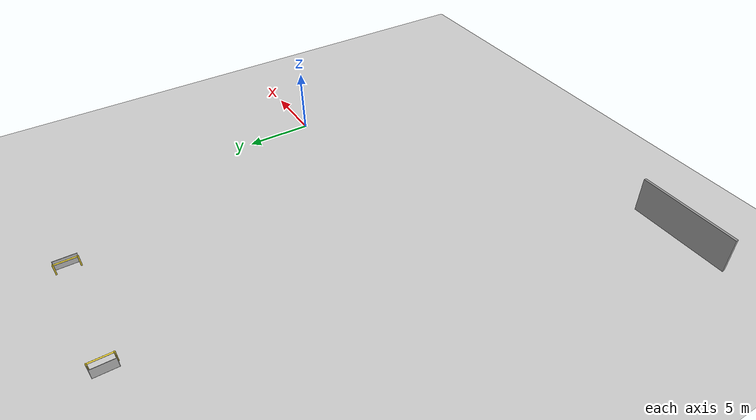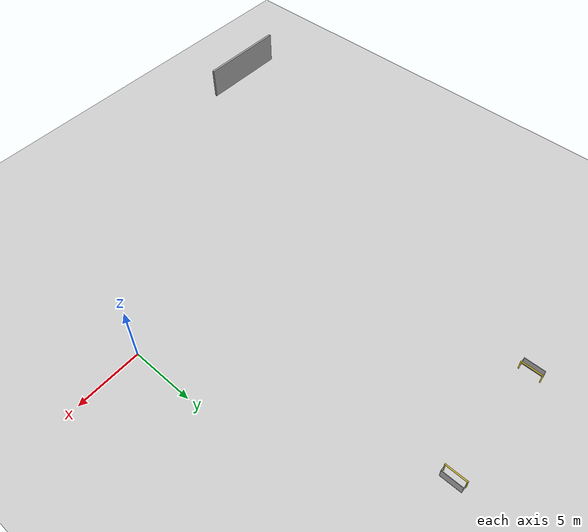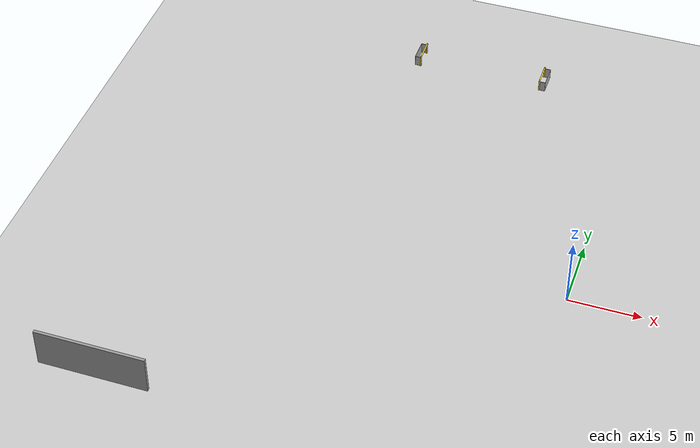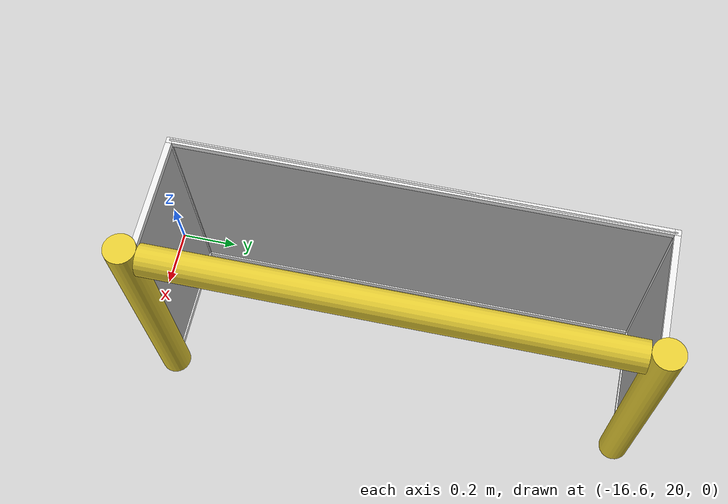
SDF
<sdf version="1.6">
 <world name="default">
  <light name="sun" type="directional">
   <pose>0 0 10 0 -0 0</pose>
   <diffuse>0.8 0.8 0.8 1</diffuse>
   <specular>0.2 0.2 0.2 1</specular>
   <attenuation>
    <range>1000</range>
    <constant>0.9</constant>
    <linear>0.01</linear>
    <quadratic>0.001</quadratic>
   </attenuation>
   <direction>-0.5 0.1 -0.9</direction>
  </light>
  <model name="ground_plane">
   <static>1</static>
   <link name="link">
    <collision name="collision">
     <geometry><plane><normal>0 0 1</normal><size>100 100</size></plane></geometry>
     <surface><friction><ode><mu>100</mu><mu2>50</mu2></ode></friction></surface>
    </collision>
    <visual name="visual">
     <cast_shadows>0</cast_shadows>
     <geometry><plane><normal>0 0 1</normal><size>100 100</size></plane></geometry>
     <material>
      <script><uri>file://media/materials/scripts/gazebo.material</uri><name>Gazebo/Grey</name></script>
     </material>
    </visual>
   </link>
  </model>
  <gravity>0 0 -9.8</gravity>
  <magnetic_field>6e-06 2.3e-05 -4.2e-05</magnetic_field>
  <atmosphere type="adiabatic"/>
  <physics name="default_physics" default="0" type="ode">
   <max_step_size>0.001</max_step_size>
   <real_time_factor>1</real_time_factor>
   <real_time_update_rate>1000</real_time_update_rate>
  </physics>
  <scene><ambient>0.4 0.4 0.4 1</ambient><background>0.7 0.7 0.7 1</background><shadows>1</shadows></scene>
  <spherical_coordinates>
   <surface_model>EARTH_WGS84</surface_model>
   <latitude_deg>0</latitude_deg>
   <longitude_deg>0</longitude_deg>
   <elevation>0</elevation>
   <heading_deg>0</heading_deg>
  </spherical_coordinates>
  <model name="grey_wall">
   <static>1</static>
   <link name="link">
    <pose>0 0 1.4 0 -0 0</pose>
    <collision name="collision"><geometry><box><size>7.5 0.2 2.8</size></box></geometry></collision>
    <visual name="visual">
     <cast_shadows>0</cast_shadows>
     <geometry><box><size>7.5 0.2 2.8</size></box></geometry>
     <material>
      <script>
       <uri>model://grey_wall/materials/scripts</uri>
       <uri>model://grey_wall/materials/textures</uri>
       <name>vrc/grey_wall</name>
      </script>
     </material>
    </visual>
   </link>
   <pose>-26.4741 -15.7944 0 0 -0 0</pose>
  </model>
  <model name="RoboCup 2014 SPL Goal">
   <static>1</static>
   <link name="left_post">
    <pose>0 0.8 0.45 0 -0 0</pose>
    <collision name="collision">
     <geometry><cylinder><radius>0.05</radius><length>0.9</length></cylinder></geometry>
    </collision>
    <visual name="visual">
     <geometry><cylinder><radius>0.05</radius><length>0.9</length></cylinder></geometry>
     <material>
      <script><uri>file://media/materials/scripts/gazebo.material</uri><name>Gazebo/ZincYellow</name></script>
     </material>
    </visual>
   </link>
   <link name="left_support_horiz_lower">
    <pose>0.24 0.8 0.01 0 -0 0</pose>
    <collision name="collision"><geometry><box><size>0.38 0.02 0.02</size></box></geometry></collision>
    <visual name="visual">
     <geometry><box><size>0.38 0.02 0.02</size></box></geometry>
     <material>
      <script><uri>file://media/materials/scripts/gazebo.material</uri><name>Gazebo/White</name></script>
     </material>
    </visual>
   </link>
   <link name="left_support_horiz_upper">
    <pose>0.24 0.8 0.79 0 -0 0</pose>
    <collision name="collision"><geometry><box><size>0.38 0.02 0.02</size></box></geometry></collision>
    <visual name="visual">
     <geometry><box><size>0.38 0.02 0.02</size></box></geometry>
     <material>
      <script><uri>file://media/materials/scripts/gazebo.material</uri><name>Gazebo/White</name></script>
     </material>
    </visual>
   </link>
   <link name="left_support_vertical">
    <pose>0.44 0.8 0.4 3.14159 1.57079 3.14159</pose>
    <collision name="collision"><geometry><box><size>0.8 0.02 0.02</size></box></geometry></collision>
    <visual name="visual">
     <geometry><box><size>0.8 0.02 0.02</size></box></geometry>
     <material>
      <script><uri>file://media/materials/scripts/gazebo.material</uri><name>Gazebo/White</name></script>
     </material>
    </visual>
   </link>
   <link name="right_support_horiz_lower">
    <pose>0.24 -0.8 0.01 0 -0 0</pose>
    <collision name="collision"><geometry><box><size>0.38 0.02 0.02</size></box></geometry></collision>
    <visual name="visual">
     <geometry><box><size>0.38 0.02 0.02</size></box></geometry>
     <material>
      <script><uri>file://media/materials/scripts/gazebo.material</uri><name>Gazebo/White</name></script>
     </material>
    </visual>
   </link>
   <link name="right_support_horiz_upper">
    <pose>0.24 -0.8 0.79 0 -0 0</pose>
    <collision name="collision"><geometry><box><size>0.38 0.02 0.02</size></box></geometry></collision>
    <visual name="visual">
     <geometry><box><size>0.38 0.02 0.02</size></box></geometry>
     <material>
      <script><uri>file://media/materials/scripts/gazebo.material</uri><name>Gazebo/White</name></script>
     </material>
    </visual>
   </link>
   <link name="right_support_vertical">
    <pose>0.44 -0.8 0.4 3.14159 1.57079 3.14159</pose>
    <collision name="collision"><geometry><box><size>0.8 0.02 0.02</size></box></geometry></collision>
    <visual name="visual">
     <geometry><box><size>0.8 0.02 0.02</size></box></geometry>
     <material>
      <script><uri>file://media/materials/scripts/gazebo.material</uri><name>Gazebo/White</name></script>
     </material>
    </visual>
   </link>
   <link name="center_support_horiz_lower">
    <pose>0.44 0 0.01 3.14159 1.57079 3.14159</pose>
    <collision name="collision"><geometry><box><size>0.02 1.58 0.02</size></box></geometry></collision>
    <visual name="visual">
     <geometry><box><size>0.02 1.58 0.02</size></box></geometry>
     <material>
      <script><uri>file://media/materials/scripts/gazebo.material</uri><name>Gazebo/White</name></script>
     </material>
    </visual>
   </link>
   <link name="center_support_horiz_upper">
    <pose>0.44 0 0.79 3.14159 1.57079 3.14159</pose>
    <collision name="collision"><geometry><box><size>0.02 1.58 0.02</size></box></geometry></collision>
    <visual name="visual">
     <geometry><box><size>0.02 1.58 0.02</size></box></geometry>
     <material>
      <script><uri>file://media/materials/scripts/gazebo.material</uri><name>Gazebo/White</name></script>
     </material>
    </visual>
   </link>
   <link name="right_post">
    <pose>0 -0.8 0.45 0 -0 0</pose>
    <collision name="collision">
     <geometry><cylinder><radius>0.05</radius><length>0.9</length></cylinder></geometry>
    </collision>
    <visual name="visual">
     <geometry><cylinder><radius>0.05</radius><length>0.9</length></cylinder></geometry>
     <material>
      <script><uri>file://media/materials/scripts/gazebo.material</uri><name>Gazebo/ZincYellow</name></script>
     </material>
    </visual>
   </link>
   <link name="crossbar">
    <pose>0 0 0.85 1.57 1.57 0</pose>
    <collision name="collision">
     <geometry><cylinder><radius>0.05</radius><length>1.5</length></cylinder></geometry>
    </collision>
    <visual name="visual">
     <geometry><cylinder><radius>0.05</radius><length>1.5</length></cylinder></geometry>
     <material>
      <script><uri>file://media/materials/scripts/gazebo.material</uri><name>Gazebo/ZincYellow</name></script>
     </material>
    </visual>
   </link>
   <link name="center_net">
    <pose>0.44 0 0.4 0 -0 0</pose>
    <collision name="collision"><geometry><box><size>0.01 1.6 0.8</size></box></geometry></collision>
    <visual name="visual">
     <geometry><box><size>0.01 1.6 0.8</size></box></geometry>
     <material>
      <script>
       <uri>model://robocup09_spl_field/materials/scripts/</uri>
       <uri>model://robocup09_spl_field/materials/textures/</uri>
       <name>RoboCup/Net</name>
      </script>
     </material>
    </visual>
   </link>
   <link name="left_net">
    <pose>0.24 0.8 0.4 0 -0 0</pose>
    <collision name="collision"><geometry><box><size>0.38 0.01 0.76</size></box></geometry></collision>
    <visual name="visual">
     <geometry><box><size>0.38 0.01 0.76</size></box></geometry>
     <material>
      <script>
       <uri>model://robocup09_spl_field/materials/scripts/</uri>
       <uri>model://robocup09_spl_field/materials/textures/</uri>
       <name>RoboCup/Net</name>
      </script>
     </material>
    </visual>
   </link>
   <link name="right_net">
    <pose>0.24 -0.8 0.4 0 -0 0</pose>
    <collision name="collision"><geometry><box><size>0.38 0.01 0.76</size></box></geometry></collision>
    <visual name="visual">
     <geometry><box><size>0.38 0.01 0.76</size></box></geometry>
     <material>
      <script>
       <uri>model://robocup09_spl_field/materials/scripts/</uri>
       <uri>model://robocup09_spl_field/materials/textures/</uri>
       <name>RoboCup/Net</name>
      </script>
     </material>
    </visual>
   </link>
   <pose>-6.98832 20.9878 0 0 -0 0</pose>
  </model>
  <model name="RoboCup 2014 SPL Goal_0">
   <static>1</static>
   <link name="left_post">
    <pose>0 0.8 0.45 0 -0 0</pose>
    <collision name="collision">
     <geometry><cylinder><radius>0.05</radius><length>0.9</length></cylinder></geometry>
    </collision>
    <visual name="visual">
     <geometry><cylinder><radius>0.05</radius><length>0.9</length></cylinder></geometry>
     <material>
      <script><uri>file://media/materials/scripts/gazebo.material</uri><name>Gazebo/ZincYellow</name></script>
     </material>
    </visual>
   </link>
   <link name="left_support_horiz_lower">
    <pose>0.24 0.8 0.01 0 -0 0</pose>
    <collision name="collision"><geometry><box><size>0.38 0.02 0.02</size></box></geometry></collision>
    <visual name="visual">
     <geometry><box><size>0.38 0.02 0.02</size></box></geometry>
     <material>
      <script><uri>file://media/materials/scripts/gazebo.material</uri><name>Gazebo/White</name></script>
     </material>
    </visual>
   </link>
   <link name="left_support_horiz_upper">
    <pose>0.24 0.8 0.79 0 -0 0</pose>
    <collision name="collision"><geometry><box><size>0.38 0.02 0.02</size></box></geometry></collision>
    <visual name="visual">
     <geometry><box><size>0.38 0.02 0.02</size></box></geometry>
     <material>
      <script><uri>file://media/materials/scripts/gazebo.material</uri><name>Gazebo/White</name></script>
     </material>
    </visual>
   </link>
   <link name="left_support_vertical">
    <pose>0.44 0.8 0.4 3.14159 1.57079 3.14159</pose>
    <collision name="collision"><geometry><box><size>0.8 0.02 0.02</size></box></geometry></collision>
    <visual name="visual">
     <geometry><box><size>0.8 0.02 0.02</size></box></geometry>
     <material>
      <script><uri>file://media/materials/scripts/gazebo.material</uri><name>Gazebo/White</name></script>
     </material>
    </visual>
   </link>
   <link name="right_support_horiz_lower">
    <pose>0.24 -0.8 0.01 0 -0 0</pose>
    <collision name="collision"><geometry><box><size>0.38 0.02 0.02</size></box></geometry></collision>
    <visual name="visual">
     <geometry><box><size>0.38 0.02 0.02</size></box></geometry>
     <material>
      <script><uri>file://media/materials/scripts/gazebo.material</uri><name>Gazebo/White</name></script>
     </material>
    </visual>
   </link>
   <link name="right_support_horiz_upper">
    <pose>0.24 -0.8 0.79 0 -0 0</pose>
    <collision name="collision"><geometry><box><size>0.38 0.02 0.02</size></box></geometry></collision>
    <visual name="visual">
     <geometry><box><size>0.38 0.02 0.02</size></box></geometry>
     <material>
      <script><uri>file://media/materials/scripts/gazebo.material</uri><name>Gazebo/White</name></script>
     </material>
    </visual>
   </link>
   <link name="right_support_vertical">
    <pose>0.44 -0.8 0.4 3.14159 1.57079 3.14159</pose>
    <collision name="collision"><geometry><box><size>0.8 0.02 0.02</size></box></geometry></collision>
    <visual name="visual">
     <geometry><box><size>0.8 0.02 0.02</size></box></geometry>
     <material>
      <script><uri>file://media/materials/scripts/gazebo.material</uri><name>Gazebo/White</name></script>
     </material>
    </visual>
   </link>
   <link name="center_support_horiz_lower">
    <pose>0.44 0 0.01 3.14159 1.57079 3.14159</pose>
    <collision name="collision"><geometry><box><size>0.02 1.58 0.02</size></box></geometry></collision>
    <visual name="visual">
     <geometry><box><size>0.02 1.58 0.02</size></box></geometry>
     <material>
      <script><uri>file://media/materials/scripts/gazebo.material</uri><name>Gazebo/White</name></script>
     </material>
    </visual>
   </link>
   <link name="center_support_horiz_upper">
    <pose>0.44 0 0.79 3.14159 1.57079 3.14159</pose>
    <collision name="collision"><geometry><box><size>0.02 1.58 0.02</size></box></geometry></collision>
    <visual name="visual">
     <geometry><box><size>0.02 1.58 0.02</size></box></geometry>
     <material>
      <script><uri>file://media/materials/scripts/gazebo.material</uri><name>Gazebo/White</name></script>
     </material>
    </visual>
   </link>
   <link name="right_post">
    <pose>0 -0.8 0.45 0 -0 0</pose>
    <collision name="collision">
     <geometry><cylinder><radius>0.05</radius><length>0.9</length></cylinder></geometry>
    </collision>
    <visual name="visual">
     <geometry><cylinder><radius>0.05</radius><length>0.9</length></cylinder></geometry>
     <material>
      <script><uri>file://media/materials/scripts/gazebo.material</uri><name>Gazebo/ZincYellow</name></script>
     </material>
    </visual>
   </link>
   <link name="crossbar">
    <pose>0 0 0.85 1.57 1.57 0</pose>
    <collision name="collision">
     <geometry><cylinder><radius>0.05</radius><length>1.5</length></cylinder></geometry>
    </collision>
    <visual name="visual">
     <geometry><cylinder><radius>0.05</radius><length>1.5</length></cylinder></geometry>
     <material>
      <script><uri>file://media/materials/scripts/gazebo.material</uri><name>Gazebo/ZincYellow</name></script>
     </material>
    </visual>
   </link>
   <link name="center_net">
    <pose>0.44 0 0.4 0 -0 0</pose>
    <collision name="collision"><geometry><box><size>0.01 1.6 0.8</size></box></geometry></collision>
    <visual name="visual">
     <geometry><box><size>0.01 1.6 0.8</size></box></geometry>
     <material>
      <script>
       <uri>model://robocup09_spl_field/materials/scripts/</uri>
       <uri>model://robocup09_spl_field/materials/textures/</uri>
       <name>RoboCup/Net</name>
      </script>
     </material>
    </visual>
   </link>
   <link name="left_net">
    <pose>0.24 0.8 0.4 0 -0 0</pose>
    <collision name="collision"><geometry><box><size>0.38 0.01 0.76</size></box></geometry></collision>
    <visual name="visual">
     <geometry><box><size>0.38 0.01 0.76</size></box></geometry>
     <material>
      <script>
       <uri>model://robocup09_spl_field/materials/scripts/</uri>
       <uri>model://robocup09_spl_field/materials/textures/</uri>
       <name>RoboCup/Net</name>
      </script>
     </material>
    </visual>
   </link>
   <link name="right_net">
    <pose>0.24 -0.8 0.4 0 -0 0</pose>
    <collision name="collision"><geometry><box><size>0.38 0.01 0.76</size></box></geometry></collision>
    <visual name="visual">
     <geometry><box><size>0.38 0.01 0.76</size></box></geometry>
     <material>
      <script>
       <uri>model://robocup09_spl_field/materials/scripts/</uri>
       <uri>model://robocup09_spl_field/materials/textures/</uri>
       <name>RoboCup/Net</name>
      </script>
     </material>
    </visual>
   </link>
   <pose>-16.108 20.9164 0 0 -0 3.141</pose>
  </model>
 </world>
</sdf>
